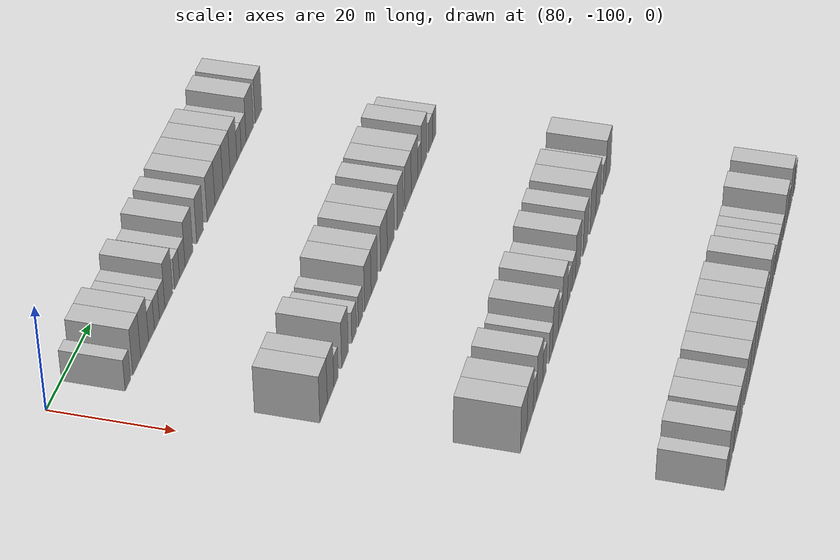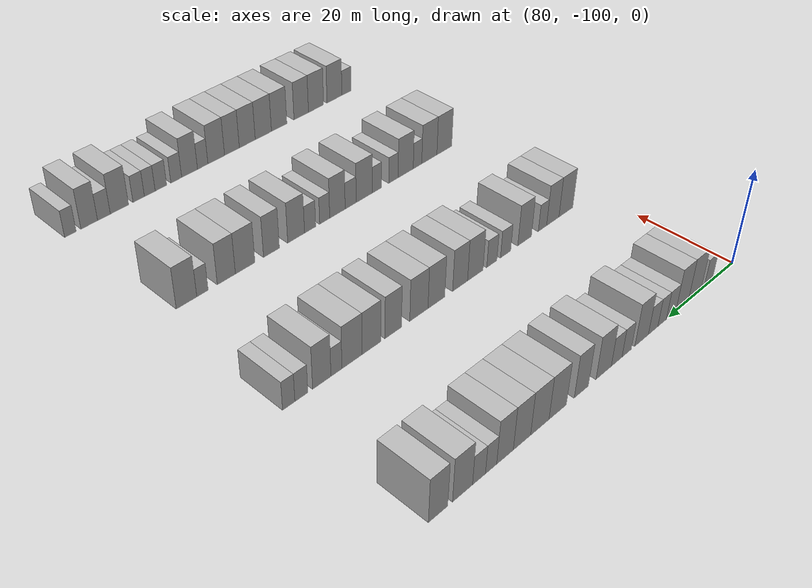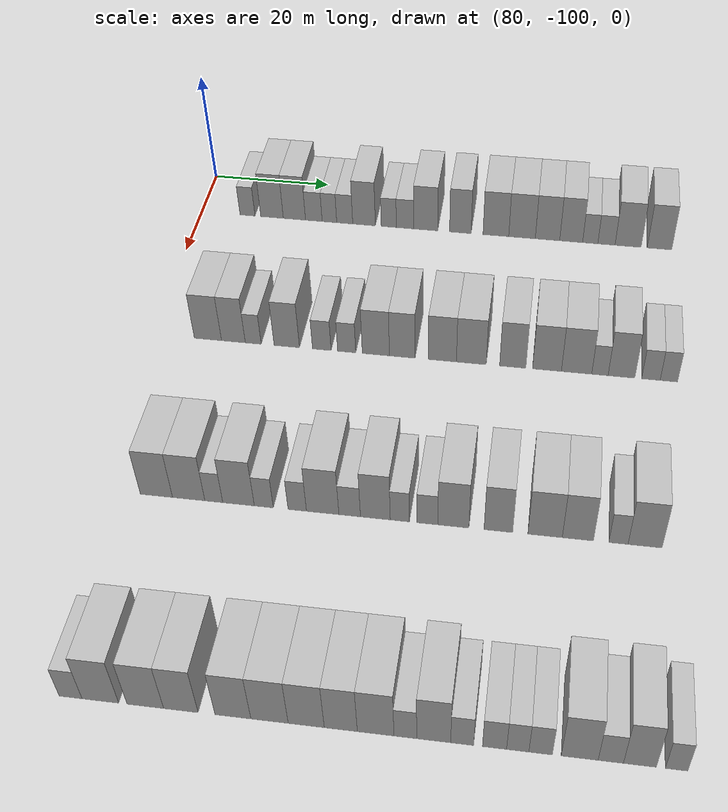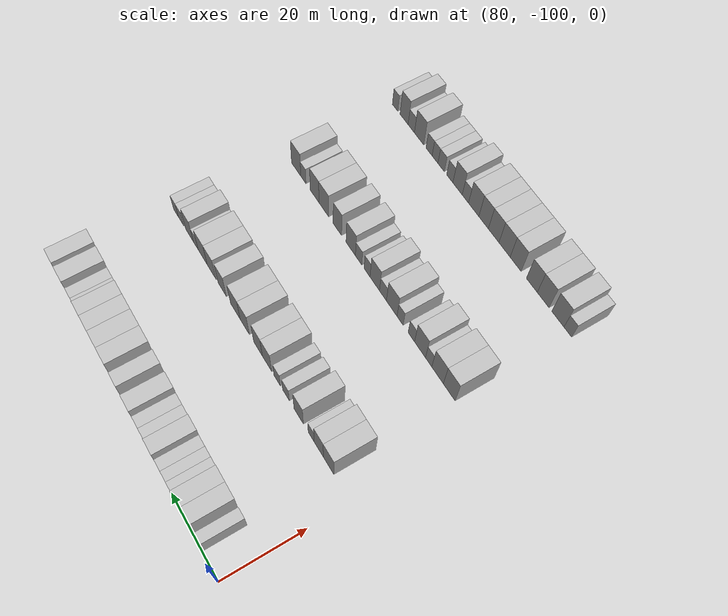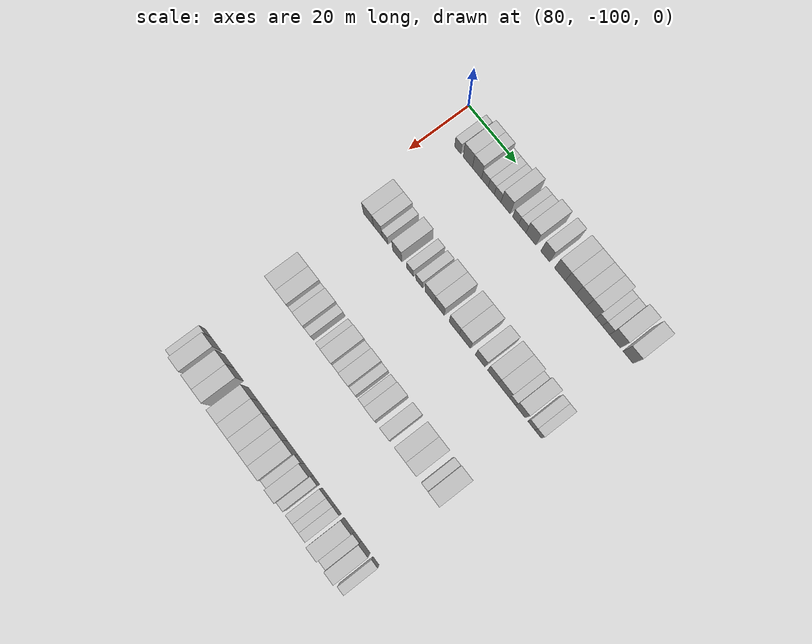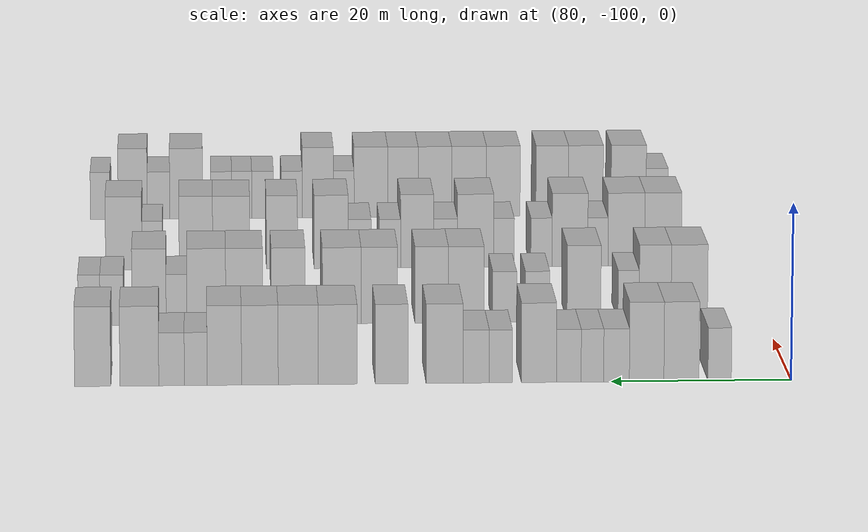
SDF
<sdf version="1.6">
 <world name="default">
  <model name="building_544">
   <static>1</static>
   <pose>85.0000 -92.0506 0 0.000000 0.000000 0.000000</pose>
   <link name="link">
    <pose>0 0 3.00 0 0 0</pose>
    <collision name="collision"><geometry><box><size>10.0000 2.5939 6.0000</size></box></geometry></collision>
    <visual name="visual">
     <cast_shadows>0</cast_shadows>
     <geometry><box><size>10.0000 2.5939 6.0000</size></box></geometry>
     <material>
      <script>
       <uri>model://HANNAS_wall/materials/scripts</uri>
       <uri>model://HANNAS_wall/materials/textures</uri>
       <name>vrc/HANNAS_wall</name>
      </script>
     </material>
    </visual>
   </link>
  </model>
  <model name="building_545">
   <static>1</static>
   <pose>85.0000 -87.8063 0 0.000000 0.000000 0.000000</pose>
   <link name="link">
    <pose>0 0 4.50 0 0 0</pose>
    <collision name="collision"><geometry><box><size>10.0000 3.8947 9.0000</size></box></geometry></collision>
    <visual name="visual">
     <cast_shadows>0</cast_shadows>
     <geometry><box><size>10.0000 3.8947 9.0000</size></box></geometry>
     <material>
      <script>
       <uri>model://HANNAS_wall/materials/scripts</uri>
       <uri>model://HANNAS_wall/materials/textures</uri>
       <name>vrc/HANNAS_wall</name>
      </script>
     </material>
    </visual>
   </link>
  </model>
  <model name="building_546">
   <static>1</static>
   <pose>85.0000 -83.9448 0 0.000000 0.000000 0.000000</pose>
   <link name="link">
    <pose>0 0 4.50 0 0 0</pose>
    <collision name="collision"><geometry><box><size>10.0000 3.8283 9.0000</size></box></geometry></collision>
    <visual name="visual">
     <cast_shadows>0</cast_shadows>
     <geometry><box><size>10.0000 3.8283 9.0000</size></box></geometry>
     <material>
      <script>
       <uri>model://HANNAS_wall/materials/scripts</uri>
       <uri>model://HANNAS_wall/materials/textures</uri>
       <name>vrc/HANNAS_wall</name>
      </script>
     </material>
    </visual>
   </link>
  </model>
  <model name="building_547">
   <static>1</static>
   <pose>85.0000 -80.6047 0 0.000000 0.000000 0.000000</pose>
   <link name="link">
    <pose>0 0 3.00 0 0 0</pose>
    <collision name="collision"><geometry><box><size>10.0000 2.8519 6.0000</size></box></geometry></collision>
    <visual name="visual">
     <cast_shadows>0</cast_shadows>
     <geometry><box><size>10.0000 2.8519 6.0000</size></box></geometry>
     <material>
      <script>
       <uri>model://HANNAS_wall/materials/scripts</uri>
       <uri>model://HANNAS_wall/materials/textures</uri>
       <name>vrc/HANNAS_wall</name>
      </script>
     </material>
    </visual>
   </link>
  </model>
  <model name="building_548">
   <static>1</static>
   <pose>85.0000 -77.9286 0 0.000000 0.000000 0.000000</pose>
   <link name="link">
    <pose>0 0 3.00 0 0 0</pose>
    <collision name="collision"><geometry><box><size>10.0000 2.5002 6.0000</size></box></geometry></collision>
    <visual name="visual">
     <cast_shadows>0</cast_shadows>
     <geometry><box><size>10.0000 2.5002 6.0000</size></box></geometry>
     <material>
      <script>
       <uri>model://HANNAS_wall/materials/scripts</uri>
       <uri>model://HANNAS_wall/materials/textures</uri>
       <name>vrc/HANNAS_wall</name>
      </script>
     </material>
    </visual>
   </link>
  </model>
  <model name="building_549">
   <static>1</static>
   <pose>85.0000 -75.3104 0 0.000000 0.000000 0.000000</pose>
   <link name="link">
    <pose>0 0 3.00 0 0 0</pose>
    <collision name="collision"><geometry><box><size>10.0000 2.7361 6.0000</size></box></geometry></collision>
    <visual name="visual">
     <cast_shadows>0</cast_shadows>
     <geometry><box><size>10.0000 2.7361 6.0000</size></box></geometry>
     <material>
      <script>
       <uri>model://HANNAS_wall/materials/scripts</uri>
       <uri>model://HANNAS_wall/materials/textures</uri>
       <name>vrc/HANNAS_wall</name>
      </script>
     </material>
    </visual>
   </link>
  </model>
  <model name="building_550">
   <static>1</static>
   <pose>85.0000 -72.0088 0 0.000000 0.000000 0.000000</pose>
   <link name="link">
    <pose>0 0 4.50 0 0 0</pose>
    <collision name="collision"><geometry><box><size>10.0000 3.8672 9.0000</size></box></geometry></collision>
    <visual name="visual">
     <cast_shadows>0</cast_shadows>
     <geometry><box><size>10.0000 3.8672 9.0000</size></box></geometry>
     <material>
      <script>
       <uri>model://HANNAS_wall/materials/scripts</uri>
       <uri>model://HANNAS_wall/materials/textures</uri>
       <name>vrc/HANNAS_wall</name>
      </script>
     </material>
    </visual>
   </link>
  </model>
  <model name="building_551">
   <static>1</static>
   <pose>85.0000 -67.7927 0 0.000000 0.000000 0.000000</pose>
   <link name="link">
    <pose>0 0 3.00 0 0 0</pose>
    <collision name="collision"><geometry><box><size>10.0000 2.5650 6.0000</size></box></geometry></collision>
    <visual name="visual">
     <cast_shadows>0</cast_shadows>
     <geometry><box><size>10.0000 2.5650 6.0000</size></box></geometry>
     <material>
      <script>
       <uri>model://HANNAS_wall/materials/scripts</uri>
       <uri>model://HANNAS_wall/materials/textures</uri>
       <name>vrc/HANNAS_wall</name>
      </script>
     </material>
    </visual>
   </link>
  </model>
  <model name="building_552">
   <static>1</static>
   <pose>85.0000 -65.0519 0 0.000000 0.000000 0.000000</pose>
   <link name="link">
    <pose>0 0 3.00 0 0 0</pose>
    <collision name="collision"><geometry><box><size>10.0000 2.9165 6.0000</size></box></geometry></collision>
    <visual name="visual">
     <cast_shadows>0</cast_shadows>
     <geometry><box><size>10.0000 2.9165 6.0000</size></box></geometry>
     <material>
      <script>
       <uri>model://HANNAS_wall/materials/scripts</uri>
       <uri>model://HANNAS_wall/materials/textures</uri>
       <name>vrc/HANNAS_wall</name>
      </script>
     </material>
    </visual>
   </link>
  </model>
  <model name="building_553">
   <static>1</static>
   <pose>85.0000 -61.5553 0 0.000000 0.000000 0.000000</pose>
   <link name="link">
    <pose>0 0 4.50 0 0 0</pose>
    <collision name="collision"><geometry><box><size>10.0000 4.0767 9.0000</size></box></geometry></collision>
    <visual name="visual">
     <cast_shadows>0</cast_shadows>
     <geometry><box><size>10.0000 4.0767 9.0000</size></box></geometry>
     <material>
      <script>
       <uri>model://HANNAS_wall/materials/scripts</uri>
       <uri>model://HANNAS_wall/materials/textures</uri>
       <name>vrc/HANNAS_wall</name>
      </script>
     </material>
    </visual>
   </link>
  </model>
  <model name="building_554">
   <static>1</static>
   <pose>85.0000 -55.7080 0 0.000000 0.000000 0.000000</pose>
   <link name="link">
    <pose>0 0 4.50 0 0 0</pose>
    <collision name="collision"><geometry><box><size>10.0000 3.6177 9.0000</size></box></geometry></collision>
    <visual name="visual">
     <cast_shadows>0</cast_shadows>
     <geometry><box><size>10.0000 3.6177 9.0000</size></box></geometry>
     <material>
      <script>
       <uri>model://HANNAS_wall/materials/scripts</uri>
       <uri>model://HANNAS_wall/materials/textures</uri>
       <name>vrc/HANNAS_wall</name>
      </script>
     </material>
    </visual>
   </link>
  </model>
  <model name="building_555">
   <static>1</static>
   <pose>85.0000 -49.7536 0 0.000000 0.000000 0.000000</pose>
   <link name="link">
    <pose>0 0 4.50 0 0 0</pose>
    <collision name="collision"><geometry><box><size>10.0000 4.2912 9.0000</size></box></geometry></collision>
    <visual name="visual">
     <cast_shadows>0</cast_shadows>
     <geometry><box><size>10.0000 4.2912 9.0000</size></box></geometry>
     <material>
      <script>
       <uri>model://HANNAS_wall/materials/scripts</uri>
       <uri>model://HANNAS_wall/materials/textures</uri>
       <name>vrc/HANNAS_wall</name>
      </script>
     </material>
    </visual>
   </link>
  </model>
  <model name="building_556">
   <static>1</static>
   <pose>85.0000 -45.3958 0 0.000000 0.000000 0.000000</pose>
   <link name="link">
    <pose>0 0 4.50 0 0 0</pose>
    <collision name="collision"><geometry><box><size>10.0000 4.4243 9.0000</size></box></geometry></collision>
    <visual name="visual">
     <cast_shadows>0</cast_shadows>
     <geometry><box><size>10.0000 4.4243 9.0000</size></box></geometry>
     <material>
      <script>
       <uri>model://HANNAS_wall/materials/scripts</uri>
       <uri>model://HANNAS_wall/materials/textures</uri>
       <name>vrc/HANNAS_wall</name>
      </script>
     </material>
    </visual>
   </link>
  </model>
  <model name="building_557">
   <static>1</static>
   <pose>85.0000 -41.1616 0 0.000000 0.000000 0.000000</pose>
   <link name="link">
    <pose>0 0 4.50 0 0 0</pose>
    <collision name="collision"><geometry><box><size>10.0000 4.0440 9.0000</size></box></geometry></collision>
    <visual name="visual">
     <cast_shadows>0</cast_shadows>
     <geometry><box><size>10.0000 4.0440 9.0000</size></box></geometry>
     <material>
      <script>
       <uri>model://HANNAS_wall/materials/scripts</uri>
       <uri>model://HANNAS_wall/materials/textures</uri>
       <name>vrc/HANNAS_wall</name>
      </script>
     </material>
    </visual>
   </link>
  </model>
  <model name="building_558">
   <static>1</static>
   <pose>85.0000 -37.2441 0 0.000000 0.000000 0.000000</pose>
   <link name="link">
    <pose>0 0 4.50 0 0 0</pose>
    <collision name="collision"><geometry><box><size>10.0000 3.7911 9.0000</size></box></geometry></collision>
    <visual name="visual">
     <cast_shadows>0</cast_shadows>
     <geometry><box><size>10.0000 3.7911 9.0000</size></box></geometry>
     <material>
      <script>
       <uri>model://HANNAS_wall/materials/scripts</uri>
       <uri>model://HANNAS_wall/materials/textures</uri>
       <name>vrc/HANNAS_wall</name>
      </script>
     </material>
    </visual>
   </link>
  </model>
  <model name="building_559">
   <static>1</static>
   <pose>85.0000 -34.0935 0 0.000000 0.000000 0.000000</pose>
   <link name="link">
    <pose>0 0 3.00 0 0 0</pose>
    <collision name="collision"><geometry><box><size>10.0000 2.5101 6.0000</size></box></geometry></collision>
    <visual name="visual">
     <cast_shadows>0</cast_shadows>
     <geometry><box><size>10.0000 2.5101 6.0000</size></box></geometry>
     <material>
      <script>
       <uri>model://HANNAS_wall/materials/scripts</uri>
       <uri>model://HANNAS_wall/materials/textures</uri>
       <name>vrc/HANNAS_wall</name>
      </script>
     </material>
    </visual>
   </link>
  </model>
  <model name="building_560">
   <static>1</static>
   <pose>85.0000 -31.4238 0 0.000000 0.000000 0.000000</pose>
   <link name="link">
    <pose>0 0 3.00 0 0 0</pose>
    <collision name="collision"><geometry><box><size>10.0000 2.8292 6.0000</size></box></geometry></collision>
    <visual name="visual">
     <cast_shadows>0</cast_shadows>
     <geometry><box><size>10.0000 2.8292 6.0000</size></box></geometry>
     <material>
      <script>
       <uri>model://HANNAS_wall/materials/scripts</uri>
       <uri>model://HANNAS_wall/materials/textures</uri>
       <name>vrc/HANNAS_wall</name>
      </script>
     </material>
    </visual>
   </link>
  </model>
  <model name="building_561">
   <static>1</static>
   <pose>85.0000 -27.8704 0 0.000000 0.000000 0.000000</pose>
   <link name="link">
    <pose>0 0 4.50 0 0 0</pose>
    <collision name="collision"><geometry><box><size>10.0000 4.2775 9.0000</size></box></geometry></collision>
    <visual name="visual">
     <cast_shadows>0</cast_shadows>
     <geometry><box><size>10.0000 4.2775 9.0000</size></box></geometry>
     <material>
      <script>
       <uri>model://HANNAS_wall/materials/scripts</uri>
       <uri>model://HANNAS_wall/materials/textures</uri>
       <name>vrc/HANNAS_wall</name>
      </script>
     </material>
    </visual>
   </link>
  </model>
  <model name="building_562">
   <static>1</static>
   <pose>85.0000 -22.7356 0 0.000000 0.000000 0.000000</pose>
   <link name="link">
    <pose>0 0 4.50 0 0 0</pose>
    <collision name="collision"><geometry><box><size>10.0000 3.9923 9.0000</size></box></geometry></collision>
    <visual name="visual">
     <cast_shadows>0</cast_shadows>
     <geometry><box><size>10.0000 3.9923 9.0000</size></box></geometry>
     <material>
      <script>
       <uri>model://HANNAS_wall/materials/scripts</uri>
       <uri>model://HANNAS_wall/materials/textures</uri>
       <name>vrc/HANNAS_wall</name>
      </script>
     </material>
    </visual>
   </link>
  </model>
  <model name="building_784">
   <static>1</static>
   <pose>115.0000 -91.2197 0 0.000000 0.000000 0.000000</pose>
   <link name="link">
    <pose>0 0 4.50 0 0 0</pose>
    <collision name="collision"><geometry><box><size>10.0000 4.2332 9.0000</size></box></geometry></collision>
    <visual name="visual">
     <cast_shadows>0</cast_shadows>
     <geometry><box><size>10.0000 4.2332 9.0000</size></box></geometry>
     <material>
      <script>
       <uri>model://HANNAS_wall/materials/scripts</uri>
       <uri>model://HANNAS_wall/materials/textures</uri>
       <name>vrc/HANNAS_wall</name>
      </script>
     </material>
    </visual>
   </link>
  </model>
  <model name="building_785">
   <static>1</static>
   <pose>115.0000 -87.2560 0 0.000000 0.000000 0.000000</pose>
   <link name="link">
    <pose>0 0 4.50 0 0 0</pose>
    <collision name="collision"><geometry><box><size>10.0000 3.6942 9.0000</size></box></geometry></collision>
    <visual name="visual">
     <cast_shadows>0</cast_shadows>
     <geometry><box><size>10.0000 3.6942 9.0000</size></box></geometry>
     <material>
      <script>
       <uri>model://HANNAS_wall/materials/scripts</uri>
       <uri>model://HANNAS_wall/materials/textures</uri>
       <name>vrc/HANNAS_wall</name>
      </script>
     </material>
    </visual>
   </link>
  </model>
  <model name="building_786">
   <static>1</static>
   <pose>115.0000 -84.1795 0 0.000000 0.000000 0.000000</pose>
   <link name="link">
    <pose>0 0 3.00 0 0 0</pose>
    <collision name="collision"><geometry><box><size>10.0000 2.4587 6.0000</size></box></geometry></collision>
    <visual name="visual">
     <cast_shadows>0</cast_shadows>
     <geometry><box><size>10.0000 2.4587 6.0000</size></box></geometry>
     <material>
      <script>
       <uri>model://HANNAS_wall/materials/scripts</uri>
       <uri>model://HANNAS_wall/materials/textures</uri>
       <name>vrc/HANNAS_wall</name>
      </script>
     </material>
    </visual>
   </link>
  </model>
  <model name="building_787">
   <static>1</static>
   <pose>115.0000 -78.9938 0 0.000000 0.000000 0.000000</pose>
   <link name="link">
    <pose>0 0 4.50 0 0 0</pose>
    <collision name="collision"><geometry><box><size>10.0000 3.9128 9.0000</size></box></geometry></collision>
    <visual name="visual">
     <cast_shadows>0</cast_shadows>
     <geometry><box><size>10.0000 3.9128 9.0000</size></box></geometry>
     <material>
      <script>
       <uri>model://HANNAS_wall/materials/scripts</uri>
       <uri>model://HANNAS_wall/materials/textures</uri>
       <name>vrc/HANNAS_wall</name>
      </script>
     </material>
    </visual>
   </link>
  </model>
  <model name="building_788">
   <static>1</static>
   <pose>115.0000 -73.6145 0 0.000000 0.000000 0.000000</pose>
   <link name="link">
    <pose>0 0 3.00 0 0 0</pose>
    <collision name="collision"><geometry><box><size>10.0000 2.8457 6.0000</size></box></geometry></collision>
    <visual name="visual">
     <cast_shadows>0</cast_shadows>
     <geometry><box><size>10.0000 2.8457 6.0000</size></box></geometry>
     <material>
      <script>
       <uri>model://HANNAS_wall/materials/scripts</uri>
       <uri>model://HANNAS_wall/materials/textures</uri>
       <name>vrc/HANNAS_wall</name>
      </script>
     </material>
    </visual>
   </link>
  </model>
  <model name="building_789">
   <static>1</static>
   <pose>115.0000 -69.8092 0 0.000000 0.000000 0.000000</pose>
   <link name="link">
    <pose>0 0 3.00 0 0 0</pose>
    <collision name="collision"><geometry><box><size>10.0000 2.7649 6.0000</size></box></geometry></collision>
    <visual name="visual">
     <cast_shadows>0</cast_shadows>
     <geometry><box><size>10.0000 2.7649 6.0000</size></box></geometry>
     <material>
      <script>
       <uri>model://HANNAS_wall/materials/scripts</uri>
       <uri>model://HANNAS_wall/materials/textures</uri>
       <name>vrc/HANNAS_wall</name>
      </script>
     </material>
    </visual>
   </link>
  </model>
  <model name="building_790">
   <static>1</static>
   <pose>115.0000 -65.3640 0 0.000000 0.000000 0.000000</pose>
   <link name="link">
    <pose>0 0 4.50 0 0 0</pose>
    <collision name="collision"><geometry><box><size>10.0000 4.1256 9.0000</size></box></geometry></collision>
    <visual name="visual">
     <cast_shadows>0</cast_shadows>
     <geometry><box><size>10.0000 4.1256 9.0000</size></box></geometry>
     <material>
      <script>
       <uri>model://HANNAS_wall/materials/scripts</uri>
       <uri>model://HANNAS_wall/materials/textures</uri>
       <name>vrc/HANNAS_wall</name>
      </script>
     </material>
    </visual>
   </link>
  </model>
  <model name="building_791">
   <static>1</static>
   <pose>115.0000 -61.3599 0 0.000000 0.000000 0.000000</pose>
   <link name="link">
    <pose>0 0 4.50 0 0 0</pose>
    <collision name="collision"><geometry><box><size>10.0000 3.8825 9.0000</size></box></geometry></collision>
    <visual name="visual">
     <cast_shadows>0</cast_shadows>
     <geometry><box><size>10.0000 3.8825 9.0000</size></box></geometry>
     <material>
      <script>
       <uri>model://HANNAS_wall/materials/scripts</uri>
       <uri>model://HANNAS_wall/materials/textures</uri>
       <name>vrc/HANNAS_wall</name>
      </script>
     </material>
    </visual>
   </link>
  </model>
  <model name="building_792">
   <static>1</static>
   <pose>115.0000 -55.3087 0 0.000000 0.000000 0.000000</pose>
   <link name="link">
    <pose>0 0 4.50 0 0 0</pose>
    <collision name="collision"><geometry><box><size>10.0000 4.2199 9.0000</size></box></geometry></collision>
    <visual name="visual">
     <cast_shadows>0</cast_shadows>
     <geometry><box><size>10.0000 4.2199 9.0000</size></box></geometry>
     <material>
      <script>
       <uri>model://HANNAS_wall/materials/scripts</uri>
       <uri>model://HANNAS_wall/materials/textures</uri>
       <name>vrc/HANNAS_wall</name>
      </script>
     </material>
    </visual>
   </link>
  </model>
  <model name="building_793">
   <static>1</static>
   <pose>115.0000 -50.9670 0 0.000000 0.000000 0.000000</pose>
   <link name="link">
    <pose>0 0 4.50 0 0 0</pose>
    <collision name="collision"><geometry><box><size>10.0000 4.4636 9.0000</size></box></geometry></collision>
    <visual name="visual">
     <cast_shadows>0</cast_shadows>
     <geometry><box><size>10.0000 4.4636 9.0000</size></box></geometry>
     <material>
      <script>
       <uri>model://HANNAS_wall/materials/scripts</uri>
       <uri>model://HANNAS_wall/materials/textures</uri>
       <name>vrc/HANNAS_wall</name>
      </script>
     </material>
    </visual>
   </link>
  </model>
  <model name="building_794">
   <static>1</static>
   <pose>115.0000 -44.7842 0 0.000000 0.000000 0.000000</pose>
   <link name="link">
    <pose>0 0 4.50 0 0 0</pose>
    <collision name="collision"><geometry><box><size>10.0000 3.9021 9.0000</size></box></geometry></collision>
    <visual name="visual">
     <cast_shadows>0</cast_shadows>
     <geometry><box><size>10.0000 3.9021 9.0000</size></box></geometry>
     <material>
      <script>
       <uri>model://HANNAS_wall/materials/scripts</uri>
       <uri>model://HANNAS_wall/materials/textures</uri>
       <name>vrc/HANNAS_wall</name>
      </script>
     </material>
    </visual>
   </link>
  </model>
  <model name="building_795">
   <static>1</static>
   <pose>115.0000 -39.6983 0 0.000000 0.000000 0.000000</pose>
   <link name="link">
    <pose>0 0 4.50 0 0 0</pose>
    <collision name="collision"><geometry><box><size>10.0000 4.2696 9.0000</size></box></geometry></collision>
    <visual name="visual">
     <cast_shadows>0</cast_shadows>
     <geometry><box><size>10.0000 4.2696 9.0000</size></box></geometry>
     <material>
      <script>
       <uri>model://HANNAS_wall/materials/scripts</uri>
       <uri>model://HANNAS_wall/materials/textures</uri>
       <name>vrc/HANNAS_wall</name>
      </script>
     </material>
    </visual>
   </link>
  </model>
  <model name="building_796">
   <static>1</static>
   <pose>115.0000 -35.3232 0 0.000000 0.000000 0.000000</pose>
   <link name="link">
    <pose>0 0 4.50 0 0 0</pose>
    <collision name="collision"><geometry><box><size>10.0000 4.4807 9.0000</size></box></geometry></collision>
    <visual name="visual">
     <cast_shadows>0</cast_shadows>
     <geometry><box><size>10.0000 4.4807 9.0000</size></box></geometry>
     <material>
      <script>
       <uri>model://HANNAS_wall/materials/scripts</uri>
       <uri>model://HANNAS_wall/materials/textures</uri>
       <name>vrc/HANNAS_wall</name>
      </script>
     </material>
    </visual>
   </link>
  </model>
  <model name="building_797">
   <static>1</static>
   <pose>115.0000 -31.8822 0 0.000000 0.000000 0.000000</pose>
   <link name="link">
    <pose>0 0 3.00 0 0 0</pose>
    <collision name="collision"><geometry><box><size>10.0000 2.4012 6.0000</size></box></geometry></collision>
    <visual name="visual">
     <cast_shadows>0</cast_shadows>
     <geometry><box><size>10.0000 2.4012 6.0000</size></box></geometry>
     <material>
      <script>
       <uri>model://HANNAS_wall/materials/scripts</uri>
       <uri>model://HANNAS_wall/materials/textures</uri>
       <name>vrc/HANNAS_wall</name>
      </script>
     </material>
    </visual>
   </link>
  </model>
  <model name="building_798">
   <static>1</static>
   <pose>115.0000 -28.7198 0 0.000000 0.000000 0.000000</pose>
   <link name="link">
    <pose>0 0 4.50 0 0 0</pose>
    <collision name="collision"><geometry><box><size>10.0000 3.9236 9.0000</size></box></geometry></collision>
    <visual name="visual">
     <cast_shadows>0</cast_shadows>
     <geometry><box><size>10.0000 3.9236 9.0000</size></box></geometry>
     <material>
      <script>
       <uri>model://HANNAS_wall/materials/scripts</uri>
       <uri>model://HANNAS_wall/materials/textures</uri>
       <name>vrc/HANNAS_wall</name>
      </script>
     </material>
    </visual>
   </link>
  </model>
  <model name="building_799">
   <static>1</static>
   <pose>115.0000 -24.4110 0 0.000000 0.000000 0.000000</pose>
   <link name="link">
    <pose>0 0 3.00 0 0 0</pose>
    <collision name="collision"><geometry><box><size>10.0000 2.6941 6.0000</size></box></geometry></collision>
    <visual name="visual">
     <cast_shadows>0</cast_shadows>
     <geometry><box><size>10.0000 2.6941 6.0000</size></box></geometry>
     <material>
      <script>
       <uri>model://HANNAS_wall/materials/scripts</uri>
       <uri>model://HANNAS_wall/materials/textures</uri>
       <name>vrc/HANNAS_wall</name>
      </script>
     </material>
    </visual>
   </link>
  </model>
  <model name="building_800">
   <static>1</static>
   <pose>115.0000 -21.7962 0 0.000000 0.000000 0.000000</pose>
   <link name="link">
    <pose>0 0 3.00 0 0 0</pose>
    <collision name="collision"><geometry><box><size>10.0000 2.5354 6.0000</size></box></geometry></collision>
    <visual name="visual">
     <cast_shadows>0</cast_shadows>
     <geometry><box><size>10.0000 2.5354 6.0000</size></box></geometry>
     <material>
      <script>
       <uri>model://HANNAS_wall/materials/scripts</uri>
       <uri>model://HANNAS_wall/materials/textures</uri>
       <name>vrc/HANNAS_wall</name>
      </script>
     </material>
    </visual>
   </link>
  </model>
  <model name="building_1007">
   <static>1</static>
   <pose>145.0000 -90.5928 0 0.000000 0.000000 0.000000</pose>
   <link name="link">
    <pose>0 0 4.50 0 0 0</pose>
    <collision name="collision"><geometry><box><size>10.0000 4.4544 9.0000</size></box></geometry></collision>
    <visual name="visual">
     <cast_shadows>0</cast_shadows>
     <geometry><box><size>10.0000 4.4544 9.0000</size></box></geometry>
     <material>
      <script>
       <uri>model://HANNAS_wall/materials/scripts</uri>
       <uri>model://HANNAS_wall/materials/textures</uri>
       <name>vrc/HANNAS_wall</name>
      </script>
     </material>
    </visual>
   </link>
  </model>
  <model name="building_1008">
   <static>1</static>
   <pose>145.0000 -86.1397 0 0.000000 0.000000 0.000000</pose>
   <link name="link">
    <pose>0 0 4.50 0 0 0</pose>
    <collision name="collision"><geometry><box><size>10.0000 4.4519 9.0000</size></box></geometry></collision>
    <visual name="visual">
     <cast_shadows>0</cast_shadows>
     <geometry><box><size>10.0000 4.4519 9.0000</size></box></geometry>
     <material>
      <script>
       <uri>model://HANNAS_wall/materials/scripts</uri>
       <uri>model://HANNAS_wall/materials/textures</uri>
       <name>vrc/HANNAS_wall</name>
      </script>
     </material>
    </visual>
   </link>
  </model>
  <model name="building_1009">
   <static>1</static>
   <pose>145.0000 -82.6875 0 0.000000 0.000000 0.000000</pose>
   <link name="link">
    <pose>0 0 3.00 0 0 0</pose>
    <collision name="collision"><geometry><box><size>10.0000 2.4525 6.0000</size></box></geometry></collision>
    <visual name="visual">
     <cast_shadows>0</cast_shadows>
     <geometry><box><size>10.0000 2.4525 6.0000</size></box></geometry>
     <material>
      <script>
       <uri>model://HANNAS_wall/materials/scripts</uri>
       <uri>model://HANNAS_wall/materials/textures</uri>
       <name>vrc/HANNAS_wall</name>
      </script>
     </material>
    </visual>
   </link>
  </model>
  <model name="building_1010">
   <static>1</static>
   <pose>145.0000 -79.3058 0 0.000000 0.000000 0.000000</pose>
   <link name="link">
    <pose>0 0 4.50 0 0 0</pose>
    <collision name="collision"><geometry><box><size>10.0000 4.3108 9.0000</size></box></geometry></collision>
    <visual name="visual">
     <cast_shadows>0</cast_shadows>
     <geometry><box><size>10.0000 4.3108 9.0000</size></box></geometry>
     <material>
      <script>
       <uri>model://HANNAS_wall/materials/scripts</uri>
       <uri>model://HANNAS_wall/materials/textures</uri>
       <name>vrc/HANNAS_wall</name>
      </script>
     </material>
    </visual>
   </link>
  </model>
  <model name="building_1011">
   <static>1</static>
   <pose>145.0000 -75.8583 0 0.000000 0.000000 0.000000</pose>
   <link name="link">
    <pose>0 0 3.00 0 0 0</pose>
    <collision name="collision"><geometry><box><size>10.0000 2.5843 6.0000</size></box></geometry></collision>
    <visual name="visual">
     <cast_shadows>0</cast_shadows>
     <geometry><box><size>10.0000 2.5843 6.0000</size></box></geometry>
     <material>
      <script>
       <uri>model://HANNAS_wall/materials/scripts</uri>
       <uri>model://HANNAS_wall/materials/textures</uri>
       <name>vrc/HANNAS_wall</name>
      </script>
     </material>
    </visual>
   </link>
  </model>
  <model name="building_1012">
   <static>1</static>
   <pose>145.0000 -71.3196 0 0.000000 0.000000 0.000000</pose>
   <link name="link">
    <pose>0 0 3.00 0 0 0</pose>
    <collision name="collision"><geometry><box><size>10.0000 2.4930 6.0000</size></box></geometry></collision>
    <visual name="visual">
     <cast_shadows>0</cast_shadows>
     <geometry><box><size>10.0000 2.4930 6.0000</size></box></geometry>
     <material>
      <script>
       <uri>model://HANNAS_wall/materials/scripts</uri>
       <uri>model://HANNAS_wall/materials/textures</uri>
       <name>vrc/HANNAS_wall</name>
      </script>
     </material>
    </visual>
   </link>
  </model>
  <model name="building_1013">
   <static>1</static>
   <pose>145.0000 -67.8884 0 0.000000 0.000000 0.000000</pose>
   <link name="link">
    <pose>0 0 4.50 0 0 0</pose>
    <collision name="collision"><geometry><box><size>10.0000 4.3694 9.0000</size></box></geometry></collision>
    <visual name="visual">
     <cast_shadows>0</cast_shadows>
     <geometry><box><size>10.0000 4.3694 9.0000</size></box></geometry>
     <material>
      <script>
       <uri>model://HANNAS_wall/materials/scripts</uri>
       <uri>model://HANNAS_wall/materials/textures</uri>
       <name>vrc/HANNAS_wall</name>
      </script>
     </material>
    </visual>
   </link>
  </model>
  <model name="building_1014">
   <static>1</static>
   <pose>145.0000 -64.2537 0 0.000000 0.000000 0.000000</pose>
   <link name="link">
    <pose>0 0 3.00 0 0 0</pose>
    <collision name="collision"><geometry><box><size>10.0000 2.9001 6.0000</size></box></geometry></collision>
    <visual name="visual">
     <cast_shadows>0</cast_shadows>
     <geometry><box><size>10.0000 2.9001 6.0000</size></box></geometry>
     <material>
      <script>
       <uri>model://HANNAS_wall/materials/scripts</uri>
       <uri>model://HANNAS_wall/materials/textures</uri>
       <name>vrc/HANNAS_wall</name>
      </script>
     </material>
    </visual>
   </link>
  </model>
  <model name="building_1015">
   <static>1</static>
   <pose>145.0000 -60.8105 0 0.000000 0.000000 0.000000</pose>
   <link name="link">
    <pose>0 0 4.50 0 0 0</pose>
    <collision name="collision"><geometry><box><size>10.0000 3.9862 9.0000</size></box></geometry></collision>
    <visual name="visual">
     <cast_shadows>0</cast_shadows>
     <geometry><box><size>10.0000 3.9862 9.0000</size></box></geometry>
     <material>
      <script>
       <uri>model://HANNAS_wall/materials/scripts</uri>
       <uri>model://HANNAS_wall/materials/textures</uri>
       <name>vrc/HANNAS_wall</name>
      </script>
     </material>
    </visual>
   </link>
  </model>
  <model name="building_1016">
   <static>1</static>
   <pose>145.0000 -57.5415 0 0.000000 0.000000 0.000000</pose>
   <link name="link">
    <pose>0 0 3.00 0 0 0</pose>
    <collision name="collision"><geometry><box><size>10.0000 2.5519 6.0000</size></box></geometry></collision>
    <visual name="visual">
     <cast_shadows>0</cast_shadows>
     <geometry><box><size>10.0000 2.5519 6.0000</size></box></geometry>
     <material>
      <script>
       <uri>model://HANNAS_wall/materials/scripts</uri>
       <uri>model://HANNAS_wall/materials/textures</uri>
       <name>vrc/HANNAS_wall</name>
      </script>
     </material>
    </visual>
   </link>
  </model>
  <model name="building_1017">
   <static>1</static>
   <pose>145.0000 -53.8837 0 0.000000 0.000000 0.000000</pose>
   <link name="link">
    <pose>0 0 3.00 0 0 0</pose>
    <collision name="collision"><geometry><box><size>10.0000 2.7637 6.0000</size></box></geometry></collision>
    <visual name="visual">
     <cast_shadows>0</cast_shadows>
     <geometry><box><size>10.0000 2.7637 6.0000</size></box></geometry>
     <material>
      <script>
       <uri>model://HANNAS_wall/materials/scripts</uri>
       <uri>model://HANNAS_wall/materials/textures</uri>
       <name>vrc/HANNAS_wall</name>
      </script>
     </material>
    </visual>
   </link>
  </model>
  <model name="building_1018">
   <static>1</static>
   <pose>145.0000 -50.4438 0 0.000000 0.000000 0.000000</pose>
   <link name="link">
    <pose>0 0 4.50 0 0 0</pose>
    <collision name="collision"><geometry><box><size>10.0000 4.1161 9.0000</size></box></geometry></collision>
    <visual name="visual">
     <cast_shadows>0</cast_shadows>
     <geometry><box><size>10.0000 4.1161 9.0000</size></box></geometry>
     <material>
      <script>
       <uri>model://HANNAS_wall/materials/scripts</uri>
       <uri>model://HANNAS_wall/materials/textures</uri>
       <name>vrc/HANNAS_wall</name>
      </script>
     </material>
    </visual>
   </link>
  </model>
  <model name="building_1019">
   <static>1</static>
   <pose>145.0000 -44.5080 0 0.000000 0.000000 0.000000</pose>
   <link name="link">
    <pose>0 0 4.50 0 0 0</pose>
    <collision name="collision"><geometry><box><size>10.0000 3.7553 9.0000</size></box></geometry></collision>
    <visual name="visual">
     <cast_shadows>0</cast_shadows>
     <geometry><box><size>10.0000 3.7553 9.0000</size></box></geometry>
     <material>
      <script>
       <uri>model://HANNAS_wall/materials/scripts</uri>
       <uri>model://HANNAS_wall/materials/textures</uri>
       <name>vrc/HANNAS_wall</name>
      </script>
     </material>
    </visual>
   </link>
  </model>
  <model name="building_1020">
   <static>1</static>
   <pose>145.0000 -38.3925 0 0.000000 0.000000 0.000000</pose>
   <link name="link">
    <pose>0 0 4.50 0 0 0</pose>
    <collision name="collision"><geometry><box><size>10.0000 4.4759 9.0000</size></box></geometry></collision>
    <visual name="visual">
     <cast_shadows>0</cast_shadows>
     <geometry><box><size>10.0000 4.4759 9.0000</size></box></geometry>
     <material>
      <script>
       <uri>model://HANNAS_wall/materials/scripts</uri>
       <uri>model://HANNAS_wall/materials/textures</uri>
       <name>vrc/HANNAS_wall</name>
      </script>
     </material>
    </visual>
   </link>
  </model>
  <model name="building_1021">
   <static>1</static>
   <pose>145.0000 -34.1302 0 0.000000 0.000000 0.000000</pose>
   <link name="link">
    <pose>0 0 4.50 0 0 0</pose>
    <collision name="collision"><geometry><box><size>10.0000 4.0487 9.0000</size></box></geometry></collision>
    <visual name="visual">
     <cast_shadows>0</cast_shadows>
     <geometry><box><size>10.0000 4.0487 9.0000</size></box></geometry>
     <material>
      <script>
       <uri>model://HANNAS_wall/materials/scripts</uri>
       <uri>model://HANNAS_wall/materials/textures</uri>
       <name>vrc/HANNAS_wall</name>
      </script>
     </material>
    </visual>
   </link>
  </model>
  <model name="building_1022">
   <static>1</static>
   <pose>145.0000 -28.8683 0 0.000000 0.000000 0.000000</pose>
   <link name="link">
    <pose>0 0 3.00 0 0 0</pose>
    <collision name="collision"><geometry><box><size>10.0000 2.4749 6.0000</size></box></geometry></collision>
    <visual name="visual">
     <cast_shadows>0</cast_shadows>
     <geometry><box><size>10.0000 2.4749 6.0000</size></box></geometry>
     <material>
      <script>
       <uri>model://HANNAS_wall/materials/scripts</uri>
       <uri>model://HANNAS_wall/materials/textures</uri>
       <name>vrc/HANNAS_wall</name>
      </script>
     </material>
    </visual>
   </link>
  </model>
  <model name="building_1023">
   <static>1</static>
   <pose>145.0000 -25.4401 0 0.000000 0.000000 0.000000</pose>
   <link name="link">
    <pose>0 0 4.50 0 0 0</pose>
    <collision name="collision"><geometry><box><size>10.0000 4.3816 9.0000</size></box></geometry></collision>
    <visual name="visual">
     <cast_shadows>0</cast_shadows>
     <geometry><box><size>10.0000 4.3816 9.0000</size></box></geometry>
     <material>
      <script>
       <uri>model://HANNAS_wall/materials/scripts</uri>
       <uri>model://HANNAS_wall/materials/textures</uri>
       <name>vrc/HANNAS_wall</name>
      </script>
     </material>
    </visual>
   </link>
  </model>
  <model name="building_1231">
   <static>1</static>
   <pose>175.0000 -92.2284 0 0.000000 0.000000 0.000000</pose>
   <link name="link">
    <pose>0 0 3.00 0 0 0</pose>
    <collision name="collision"><geometry><box><size>10.0000 2.7663 6.0000</size></box></geometry></collision>
    <visual name="visual">
     <cast_shadows>0</cast_shadows>
     <geometry><box><size>10.0000 2.7663 6.0000</size></box></geometry>
     <material>
      <script>
       <uri>model://HANNAS_wall/materials/scripts</uri>
       <uri>model://HANNAS_wall/materials/textures</uri>
       <name>vrc/HANNAS_wall</name>
      </script>
     </material>
    </visual>
   </link>
  </model>
  <model name="building_1232">
   <static>1</static>
   <pose>175.0000 -88.6343 0 0.000000 0.000000 0.000000</pose>
   <link name="link">
    <pose>0 0 4.50 0 0 0</pose>
    <collision name="collision"><geometry><box><size>10.0000 4.4219 9.0000</size></box></geometry></collision>
    <visual name="visual">
     <cast_shadows>0</cast_shadows>
     <geometry><box><size>10.0000 4.4219 9.0000</size></box></geometry>
     <material>
      <script>
       <uri>model://HANNAS_wall/materials/scripts</uri>
       <uri>model://HANNAS_wall/materials/textures</uri>
       <name>vrc/HANNAS_wall</name>
      </script>
     </material>
    </visual>
   </link>
  </model>
  <model name="building_1233">
   <static>1</static>
   <pose>175.0000 -83.2331 0 0.000000 0.000000 0.000000</pose>
   <link name="link">
    <pose>0 0 4.50 0 0 0</pose>
    <collision name="collision"><geometry><box><size>10.0000 4.3805 9.0000</size></box></geometry></collision>
    <visual name="visual">
     <cast_shadows>0</cast_shadows>
     <geometry><box><size>10.0000 4.3805 9.0000</size></box></geometry>
     <material>
      <script>
       <uri>model://HANNAS_wall/materials/scripts</uri>
       <uri>model://HANNAS_wall/materials/textures</uri>
       <name>vrc/HANNAS_wall</name>
      </script>
     </material>
    </visual>
   </link>
  </model>
  <model name="building_1234">
   <static>1</static>
   <pose>175.0000 -78.9895 0 0.000000 0.000000 0.000000</pose>
   <link name="link">
    <pose>0 0 4.50 0 0 0</pose>
    <collision name="collision"><geometry><box><size>10.0000 4.1069 9.0000</size></box></geometry></collision>
    <visual name="visual">
     <cast_shadows>0</cast_shadows>
     <geometry><box><size>10.0000 4.1069 9.0000</size></box></geometry>
     <material>
      <script>
       <uri>model://HANNAS_wall/materials/scripts</uri>
       <uri>model://HANNAS_wall/materials/textures</uri>
       <name>vrc/HANNAS_wall</name>
      </script>
     </material>
    </visual>
   </link>
  </model>
  <model name="building_1235">
   <static>1</static>
   <pose>175.0000 -72.8162 0 0.000000 0.000000 0.000000</pose>
   <link name="link">
    <pose>0 0 4.50 0 0 0</pose>
    <collision name="collision"><geometry><box><size>10.0000 4.2397 9.0000</size></box></geometry></collision>
    <visual name="visual">
     <cast_shadows>0</cast_shadows>
     <geometry><box><size>10.0000 4.2397 9.0000</size></box></geometry>
     <material>
      <script>
       <uri>model://HANNAS_wall/materials/scripts</uri>
       <uri>model://HANNAS_wall/materials/textures</uri>
       <name>vrc/HANNAS_wall</name>
      </script>
     </material>
    </visual>
   </link>
  </model>
  <model name="building_1236">
   <static>1</static>
   <pose>175.0000 -68.5047 0 0.000000 0.000000 0.000000</pose>
   <link name="link">
    <pose>0 0 4.50 0 0 0</pose>
    <collision name="collision"><geometry><box><size>10.0000 4.3834 9.0000</size></box></geometry></collision>
    <visual name="visual">
     <cast_shadows>0</cast_shadows>
     <geometry><box><size>10.0000 4.3834 9.0000</size></box></geometry>
     <material>
      <script>
       <uri>model://HANNAS_wall/materials/scripts</uri>
       <uri>model://HANNAS_wall/materials/textures</uri>
       <name>vrc/HANNAS_wall</name>
      </script>
     </material>
    </visual>
   </link>
  </model>
  <model name="building_1237">
   <static>1</static>
   <pose>175.0000 -64.2052 0 0.000000 0.000000 0.000000</pose>
   <link name="link">
    <pose>0 0 4.50 0 0 0</pose>
    <collision name="collision"><geometry><box><size>10.0000 4.2156 9.0000</size></box></geometry></collision>
    <visual name="visual">
     <cast_shadows>0</cast_shadows>
     <geometry><box><size>10.0000 4.2156 9.0000</size></box></geometry>
     <material>
      <script>
       <uri>model://HANNAS_wall/materials/scripts</uri>
       <uri>model://HANNAS_wall/materials/textures</uri>
       <name>vrc/HANNAS_wall</name>
      </script>
     </material>
    </visual>
   </link>
  </model>
  <model name="building_1238">
   <static>1</static>
   <pose>175.0000 -60.1779 0 0.000000 0.000000 0.000000</pose>
   <link name="link">
    <pose>0 0 4.50 0 0 0</pose>
    <collision name="collision"><geometry><box><size>10.0000 3.8391 9.0000</size></box></geometry></collision>
    <visual name="visual">
     <cast_shadows>0</cast_shadows>
     <geometry><box><size>10.0000 3.8391 9.0000</size></box></geometry>
     <material>
      <script>
       <uri>model://HANNAS_wall/materials/scripts</uri>
       <uri>model://HANNAS_wall/materials/textures</uri>
       <name>vrc/HANNAS_wall</name>
      </script>
     </material>
    </visual>
   </link>
  </model>
  <model name="building_1239">
   <static>1</static>
   <pose>175.0000 -56.1443 0 0.000000 0.000000 0.000000</pose>
   <link name="link">
    <pose>0 0 4.50 0 0 0</pose>
    <collision name="collision"><geometry><box><size>10.0000 4.2281 9.0000</size></box></geometry></collision>
    <visual name="visual">
     <cast_shadows>0</cast_shadows>
     <geometry><box><size>10.0000 4.2281 9.0000</size></box></geometry>
     <material>
      <script>
       <uri>model://HANNAS_wall/materials/scripts</uri>
       <uri>model://HANNAS_wall/materials/textures</uri>
       <name>vrc/HANNAS_wall</name>
      </script>
     </material>
    </visual>
   </link>
  </model>
  <model name="building_1240">
   <static>1</static>
   <pose>175.0000 -52.7246 0 0.000000 0.000000 0.000000</pose>
   <link name="link">
    <pose>0 0 3.00 0 0 0</pose>
    <collision name="collision"><geometry><box><size>10.0000 2.6111 6.0000</size></box></geometry></collision>
    <visual name="visual">
     <cast_shadows>0</cast_shadows>
     <geometry><box><size>10.0000 2.6111 6.0000</size></box></geometry>
     <material>
      <script>
       <uri>model://HANNAS_wall/materials/scripts</uri>
       <uri>model://HANNAS_wall/materials/textures</uri>
       <name>vrc/HANNAS_wall</name>
      </script>
     </material>
    </visual>
   </link>
  </model>
  <model name="building_1241">
   <static>1</static>
   <pose>175.0000 -49.4718 0 0.000000 0.000000 0.000000</pose>
   <link name="link">
    <pose>0 0 4.50 0 0 0</pose>
    <collision name="collision"><geometry><box><size>10.0000 3.8945 9.0000</size></box></geometry></collision>
    <visual name="visual">
     <cast_shadows>0</cast_shadows>
     <geometry><box><size>10.0000 3.8945 9.0000</size></box></geometry>
     <material>
      <script>
       <uri>model://HANNAS_wall/materials/scripts</uri>
       <uri>model://HANNAS_wall/materials/textures</uri>
       <name>vrc/HANNAS_wall</name>
      </script>
     </material>
    </visual>
   </link>
  </model>
  <model name="building_1242">
   <static>1</static>
   <pose>175.0000 -46.2110 0 0.000000 0.000000 0.000000</pose>
   <link name="link">
    <pose>0 0 3.00 0 0 0</pose>
    <collision name="collision"><geometry><box><size>10.0000 2.6271 6.0000</size></box></geometry></collision>
    <visual name="visual">
     <cast_shadows>0</cast_shadows>
     <geometry><box><size>10.0000 2.6271 6.0000</size></box></geometry>
     <material>
      <script>
       <uri>model://HANNAS_wall/materials/scripts</uri>
       <uri>model://HANNAS_wall/materials/textures</uri>
       <name>vrc/HANNAS_wall</name>
      </script>
     </material>
    </visual>
   </link>
  </model>
  <model name="building_1243">
   <static>1</static>
   <pose>175.0000 -42.5270 0 0.000000 0.000000 0.000000</pose>
   <link name="link">
    <pose>0 0 3.00 0 0 0</pose>
    <collision name="collision"><geometry><box><size>10.0000 2.7409 6.0000</size></box></geometry></collision>
    <visual name="visual">
     <cast_shadows>0</cast_shadows>
     <geometry><box><size>10.0000 2.7409 6.0000</size></box></geometry>
     <material>
      <script>
       <uri>model://HANNAS_wall/materials/scripts</uri>
       <uri>model://HANNAS_wall/materials/textures</uri>
       <name>vrc/HANNAS_wall</name>
      </script>
     </material>
    </visual>
   </link>
  </model>
  <model name="building_1244">
   <static>1</static>
   <pose>175.0000 -39.8965 0 0.000000 0.000000 0.000000</pose>
   <link name="link">
    <pose>0 0 3.00 0 0 0</pose>
    <collision name="collision"><geometry><box><size>10.0000 2.5200 6.0000</size></box></geometry></collision>
    <visual name="visual">
     <cast_shadows>0</cast_shadows>
     <geometry><box><size>10.0000 2.5200 6.0000</size></box></geometry>
     <material>
      <script>
       <uri>model://HANNAS_wall/materials/scripts</uri>
       <uri>model://HANNAS_wall/materials/textures</uri>
       <name>vrc/HANNAS_wall</name>
      </script>
     </material>
    </visual>
   </link>
  </model>
  <model name="building_1245">
   <static>1</static>
   <pose>175.0000 -37.3114 0 0.000000 0.000000 0.000000</pose>
   <link name="link">
    <pose>0 0 3.00 0 0 0</pose>
    <collision name="collision"><geometry><box><size>10.0000 2.6502 6.0000</size></box></geometry></collision>
    <visual name="visual">
     <cast_shadows>0</cast_shadows>
     <geometry><box><size>10.0000 2.6502 6.0000</size></box></geometry>
     <material>
      <script>
       <uri>model://HANNAS_wall/materials/scripts</uri>
       <uri>model://HANNAS_wall/materials/textures</uri>
       <name>vrc/HANNAS_wall</name>
      </script>
     </material>
    </visual>
   </link>
  </model>
  <model name="building_1246">
   <static>1</static>
   <pose>175.0000 -32.9189 0 0.000000 0.000000 0.000000</pose>
   <link name="link">
    <pose>0 0 4.50 0 0 0</pose>
    <collision name="collision"><geometry><box><size>10.0000 4.1347 9.0000</size></box></geometry></collision>
    <visual name="visual">
     <cast_shadows>0</cast_shadows>
     <geometry><box><size>10.0000 4.1347 9.0000</size></box></geometry>
     <material>
      <script>
       <uri>model://HANNAS_wall/materials/scripts</uri>
       <uri>model://HANNAS_wall/materials/textures</uri>
       <name>vrc/HANNAS_wall</name>
      </script>
     </material>
    </visual>
   </link>
  </model>
  <model name="building_1247">
   <static>1</static>
   <pose>175.0000 -29.4377 0 0.000000 0.000000 0.000000</pose>
   <link name="link">
    <pose>0 0 3.00 0 0 0</pose>
    <collision name="collision"><geometry><box><size>10.0000 2.8279 6.0000</size></box></geometry></collision>
    <visual name="visual">
     <cast_shadows>0</cast_shadows>
     <geometry><box><size>10.0000 2.8279 6.0000</size></box></geometry>
     <material>
      <script>
       <uri>model://HANNAS_wall/materials/scripts</uri>
       <uri>model://HANNAS_wall/materials/textures</uri>
       <name>vrc/HANNAS_wall</name>
      </script>
     </material>
    </visual>
   </link>
  </model>
  <model name="building_1248">
   <static>1</static>
   <pose>175.0000 -26.1960 0 0.000000 0.000000 0.000000</pose>
   <link name="link">
    <pose>0 0 4.50 0 0 0</pose>
    <collision name="collision"><geometry><box><size>10.0000 3.6555 9.0000</size></box></geometry></collision>
    <visual name="visual">
     <cast_shadows>0</cast_shadows>
     <geometry><box><size>10.0000 3.6555 9.0000</size></box></geometry>
     <material>
      <script>
       <uri>model://HANNAS_wall/materials/scripts</uri>
       <uri>model://HANNAS_wall/materials/textures</uri>
       <name>vrc/HANNAS_wall</name>
      </script>
     </material>
    </visual>
   </link>
  </model>
  <model name="building_1249">
   <static>1</static>
   <pose>175.0000 -22.1272 0 0.000000 0.000000 0.000000</pose>
   <link name="link">
    <pose>0 0 3.00 0 0 0</pose>
    <collision name="collision"><geometry><box><size>10.0000 2.4821 6.0000</size></box></geometry></collision>
    <visual name="visual">
     <cast_shadows>0</cast_shadows>
     <geometry><box><size>10.0000 2.4821 6.0000</size></box></geometry>
     <material>
      <script>
       <uri>model://HANNAS_wall/materials/scripts</uri>
       <uri>model://HANNAS_wall/materials/textures</uri>
       <name>vrc/HANNAS_wall</name>
      </script>
     </material>
    </visual>
   </link>
  </model>
 </world>
</sdf>
